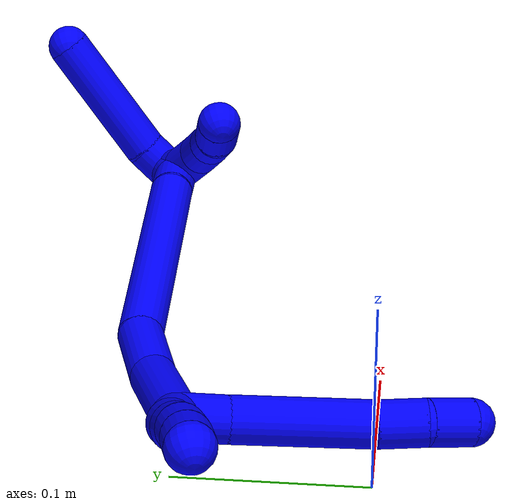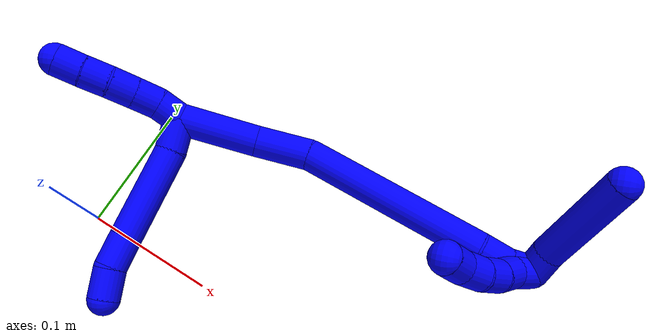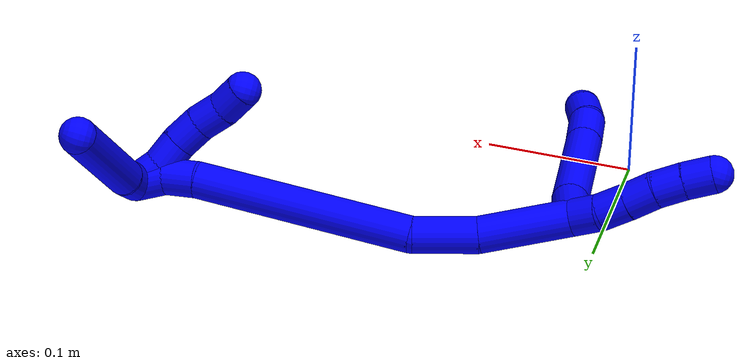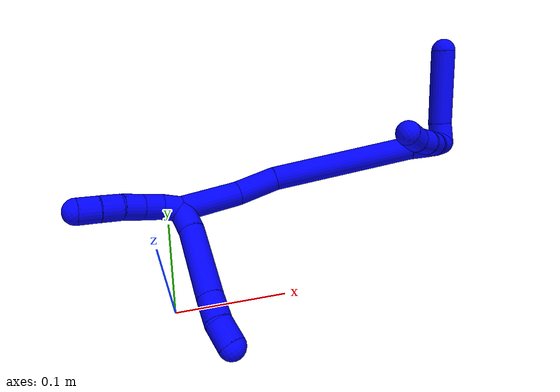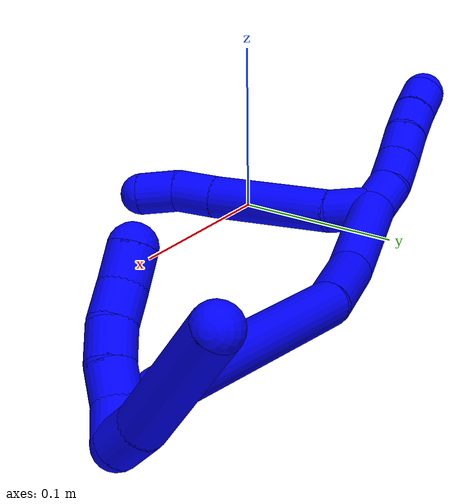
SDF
<sdf version="1.7">
 <world name="default">
  <model name="photoneo_s_sensor">
   <static>1</static>
   <pose>0 0 2 1.57079 1.57079 3.14159</pose>
   <link name="link">
    <inertial><mass>0.1</mass></inertial>
    <sensor name="sensor" type="depth">
     <update_rate>30</update_rate>
     <camera>
      <horizontal_fov>1.22</horizontal_fov>
      <image><width>1920</width><height>1200</height><format>B8G8R8</format></image>
      <clip><near>0.1</near><far>4</far></clip>
      <depth_camera><output>points</output></depth_camera>
     </camera>
     <plugin name="camera_plugin" filename="libgazebo_ros_depth_camera.so">
      <baseline>0.2</baseline>
      <alwaysOn>1</alwaysOn>
      <updateRate>0.0</updateRate>
      <cameraName>camera_ir</cameraName>
      <imageTopicName>/camera/color/image_raw</imageTopicName>
      <cameraInfoTopicName>/camera/color/camera_info</cameraInfoTopicName>
      <depthImageTopicName>/camera/depth/image_raw</depthImageTopicName>
      <depthImageCameraInfoTopicName>/camera/depth/camera_info</depthImageCameraInfoTopicName>
      <pointCloudTopicName>/camera/depth/points</pointCloudTopicName>
      <frameName>fr_optical</frameName>
      <pointCloudCutoff>0.1</pointCloudCutoff>
      <pointCloudCutoffMax>2.0</pointCloudCutoffMax>
      <distortionK1>0</distortionK1>
      <distortionK2>0</distortionK2>
      <distortionK3>0</distortionK3>
      <distortionT1>0</distortionT1>
      <distortionT2>0</distortionT2>
      <CxPrime>0</CxPrime>
      <Cx>0</Cx>
      <Cy>0</Cy>
      <focalLength>0</focalLength>
      <hackBaseline>0</hackBaseline>
     </plugin>
    </sensor>
   </link>
  </model>
  <model name="bin">
   <static>1</static>
   <link name="bottom">
    <collision name="collision-bottom">
     <pose>0 0 -0.01 0 -0 0</pose>
     <geometry><box><size>0.8 0.6 0.02</size></box></geometry>
     <surface>
      <friction><ode><mu>100</mu><mu2>100</mu2></ode></friction>
      <contact><collide_bitmask>65535</collide_bitmask></contact>
     </surface>
    </collision>
   </link>
   <link name="west_wall">
    <collision name="collision-west_wall">
     <pose>-0.41 0 0.1 0 -0 0</pose>
     <geometry><box><size>0.02 0.6 0.2</size></box></geometry>
     <surface>
      <friction><ode><mu>100</mu><mu2>100</mu2></ode></friction>
      <contact><collide_bitmask>65535</collide_bitmask></contact>
     </surface>
    </collision>
   </link>
   <link name="east_wall">
    <collision name="collision-east_wall">
     <pose>0.41 0 0.1 0 -0 0</pose>
     <geometry><box><size>0.02 0.6 0.2</size></box></geometry>
     <surface>
      <friction><ode><mu>100</mu><mu2>100</mu2></ode></friction>
      <contact><collide_bitmask>65535</collide_bitmask></contact>
     </surface>
    </collision>
   </link>
   <link name="south_wall">
    <collision name="collision-south_wall">
     <pose>0 -0.31 0.1 0 -0 0</pose>
     <geometry><box><size>0.8 0.02 0.2</size></box></geometry>
     <surface>
      <friction><ode><mu>100</mu><mu2>100</mu2></ode></friction>
      <contact><collide_bitmask>65535</collide_bitmask></contact>
     </surface>
    </collision>
   </link>
   <link name="north_wall">
    <collision name="collision-north_wall">
     <pose>0 0.31 0.1 0 -0 0</pose>
     <geometry><box><size>0.8 0.02 0.2</size></box></geometry>
     <surface>
      <friction><ode><mu>100</mu><mu2>100</mu2></ode></friction>
      <contact><collide_bitmask>65535</collide_bitmask></contact>
     </surface>
    </collision>
   </link>
  </model>
  <model name="1">
   <static>0</static>
   <link name="1">
    <collision name="collision-cylinder-e_1_2_8">
     <pose>0.011209 -0.007037 -0.0007 1.66989 1.00796 1.09407</pose>
     <geometry><cylinder><radius>0.0125</radius><length>0.026506</length></cylinder></geometry>
     <surface>
      <friction><ode><mu>1.16</mu><mu2>1.16</mu2><slip1>0</slip1><slip2>0</slip2></ode></friction>
      <contact><ode><kp>1e+06</kp><kd>1</kd><max_vel>0</max_vel><min_depth>0.001</min_depth></ode></contact>
     </surface>
    </collision>
    <visual name="visual-cylinder-e_1_2_8">
     <pose>0.011209 -0.007037 -0.0007 1.66989 1.00796 1.09407</pose>
     <geometry><cylinder><radius>0.0125</radius><length>0.026506</length></cylinder></geometry>
     <material><ambient>0 0 1 1</ambient></material>
    </visual>
    <collision name="collision-cylinder-e_2_8_9">
     <pose>0.049469 -0.038651 -0.007769 1.82439 0.817079 1.02005</pose>
     <geometry><cylinder><radius>0.0125</radius><length>0.0742</length></cylinder></geometry>
     <surface>
      <friction><ode><mu>1.16</mu><mu2>1.16</mu2><slip1>0</slip1><slip2>0</slip2></ode></friction>
      <contact><ode><kp>1e+06</kp><kd>1</kd><max_vel>0</max_vel><min_depth>0.001</min_depth></ode></contact>
     </surface>
    </collision>
    <visual name="visual-cylinder-e_2_8_9">
     <pose>0.049469 -0.038651 -0.007769 1.82439 0.817079 1.02005</pose>
     <geometry><cylinder><radius>0.0125</radius><length>0.0742</length></cylinder></geometry>
     <material><ambient>0 0 1 1</ambient></material>
    </visual>
    <collision name="collision-cylinder-e_3_9_10">
     <pose>0.085483 -0.072151 -0.015664 1.74013 0.780411 0.907331</pose>
     <geometry><cylinder><radius>0.0125</radius><length>0.025477</length></cylinder></geometry>
     <surface>
      <friction><ode><mu>1.16</mu><mu2>1.16</mu2><slip1>0</slip1><slip2>0</slip2></ode></friction>
      <contact><ode><kp>1e+06</kp><kd>1</kd><max_vel>0</max_vel><min_depth>0.001</min_depth></ode></contact>
     </surface>
    </collision>
    <visual name="visual-cylinder-e_3_9_10">
     <pose>0.085483 -0.072151 -0.015664 1.74013 0.780411 0.907331</pose>
     <geometry><cylinder><radius>0.0125</radius><length>0.025477</length></cylinder></geometry>
     <material><ambient>0 0 1 1</ambient></material>
    </visual>
    <collision name="collision-cylinder-e_4_10_6">
     <pose>0.104608 -0.087276 -0.016946 1.53157 1.02258 0.989439</pose>
     <geometry><cylinder><radius>0.0125</radius><length>0.023817</length></cylinder></geometry>
     <surface>
      <friction><ode><mu>1.16</mu><mu2>1.16</mu2><slip1>0</slip1><slip2>0</slip2></ode></friction>
      <contact><ode><kp>1e+06</kp><kd>1</kd><max_vel>0</max_vel><min_depth>0.001</min_depth></ode></contact>
     </surface>
    </collision>
    <visual name="visual-cylinder-e_4_10_6">
     <pose>0.104608 -0.087276 -0.016946 1.53157 1.02258 0.989439</pose>
     <geometry><cylinder><radius>0.0125</radius><length>0.023817</length></cylinder></geometry>
     <material><ambient>0 0 1 1</ambient></material>
    </visual>
    <collision name="collision-cylinder-e_1_2_11">
     <pose>-0.006483 -0.003358 -0.006833 2.6848 -0.705341 -2.01498</pose>
     <geometry><cylinder><radius>0.0125</radius><length>0.02</length></cylinder></geometry>
     <surface>
      <friction><ode><mu>1.16</mu><mu2>1.16</mu2><slip1>0</slip1><slip2>0</slip2></ode></friction>
      <contact><ode><kp>1e+06</kp><kd>1</kd><max_vel>0</max_vel><min_depth>0.001</min_depth></ode></contact>
     </surface>
    </collision>
    <visual name="visual-cylinder-e_1_2_11">
     <pose>-0.006483 -0.003358 -0.006833 2.6848 -0.705341 -2.01498</pose>
     <geometry><cylinder><radius>0.0125</radius><length>0.02</length></cylinder></geometry>
     <material><ambient>0 0 1 1</ambient></material>
    </visual>
    <collision name="collision-cylinder-e_2_11_12">
     <pose>-0.018118 -0.012017 -0.020401 2.47478 -0.541212 -1.35069</pose>
     <geometry><cylinder><radius>0.0125</radius><length>0.02</length></cylinder></geometry>
     <surface>
      <friction><ode><mu>1.16</mu><mu2>1.16</mu2><slip1>0</slip1><slip2>0</slip2></ode></friction>
      <contact><ode><kp>1e+06</kp><kd>1</kd><max_vel>0</max_vel><min_depth>0.001</min_depth></ode></contact>
     </surface>
    </collision>
    <visual name="visual-cylinder-e_2_11_12">
     <pose>-0.018118 -0.012017 -0.020401 2.47478 -0.541212 -1.35069</pose>
     <geometry><cylinder><radius>0.0125</radius><length>0.02</length></cylinder></geometry>
     <material><ambient>0 0 1 1</ambient></material>
    </visual>
    <collision name="collision-cylinder-e_3_12_13">
     <pose>-0.028431 -0.022964 -0.033577 2.42189 -0.542416 -1.27292</pose>
     <geometry><cylinder><radius>0.0125</radius><length>0.02</length></cylinder></geometry>
     <surface>
      <friction><ode><mu>1.16</mu><mu2>1.16</mu2><slip1>0</slip1><slip2>0</slip2></ode></friction>
      <contact><ode><kp>1e+06</kp><kd>1</kd><max_vel>0</max_vel><min_depth>0.001</min_depth></ode></contact>
     </surface>
    </collision>
    <visual name="visual-cylinder-e_3_12_13">
     <pose>-0.028431 -0.022964 -0.033577 2.42189 -0.542416 -1.27292</pose>
     <geometry><cylinder><radius>0.0125</radius><length>0.02</length></cylinder></geometry>
     <material><ambient>0 0 1 1</ambient></material>
    </visual>
    <collision name="collision-cylinder-e_4_13_14">
     <pose>-0.038237 -0.033459 -0.047428 2.56214 -0.482942 -1.38092</pose>
     <geometry><cylinder><radius>0.0125</radius><length>0.02</length></cylinder></geometry>
     <surface>
      <friction><ode><mu>1.16</mu><mu2>1.16</mu2><slip1>0</slip1><slip2>0</slip2></ode></friction>
      <contact><ode><kp>1e+06</kp><kd>1</kd><max_vel>0</max_vel><min_depth>0.001</min_depth></ode></contact>
     </surface>
    </collision>
    <visual name="visual-cylinder-e_4_13_14">
     <pose>-0.038237 -0.033459 -0.047428 2.56214 -0.482942 -1.38092</pose>
     <geometry><cylinder><radius>0.0125</radius><length>0.02</length></cylinder></geometry>
     <material><ambient>0 0 1 1</ambient></material>
    </visual>
    <collision name="collision-cylinder-e_5_14_5">
     <pose>-0.047543 -0.042537 -0.06261 2.64327 -0.485005 -1.54258</pose>
     <geometry><cylinder><radius>0.0125</radius><length>0.02</length></cylinder></geometry>
     <surface>
      <friction><ode><mu>1.16</mu><mu2>1.16</mu2><slip1>0</slip1><slip2>0</slip2></ode></friction>
      <contact><ode><kp>1e+06</kp><kd>1</kd><max_vel>0</max_vel><min_depth>0.001</min_depth></ode></contact>
     </surface>
    </collision>
    <visual name="visual-cylinder-e_5_14_5">
     <pose>-0.047543 -0.042537 -0.06261 2.64327 -0.485005 -1.54258</pose>
     <geometry><cylinder><radius>0.0125</radius><length>0.02</length></cylinder></geometry>
     <material><ambient>0 0 1 1</ambient></material>
    </visual>
    <collision name="collision-cylinder-e_1_2_15">
     <pose>0.010293 0.013205 0.026542 -0.461659 0.334185 -0.079237</pose>
     <geometry><cylinder><radius>0.0125</radius><length>0.062763</length></cylinder></geometry>
     <surface>
      <friction><ode><mu>1.16</mu><mu2>1.16</mu2><slip1>0</slip1><slip2>0</slip2></ode></friction>
      <contact><ode><kp>1e+06</kp><kd>1</kd><max_vel>0</max_vel><min_depth>0.001</min_depth></ode></contact>
     </surface>
    </collision>
    <visual name="visual-cylinder-e_1_2_15">
     <pose>0.010293 0.013205 0.026542 -0.461659 0.334185 -0.079237</pose>
     <geometry><cylinder><radius>0.0125</radius><length>0.062763</length></cylinder></geometry>
     <material><ambient>0 0 1 1</ambient></material>
    </visual>
    <collision name="collision-cylinder-e_2_15_16">
     <pose>0.025546 0.032195 0.07373 -0.273172 0.227335 -0.031378</pose>
     <geometry><cylinder><radius>0.0125</radius><length>0.044015</length></cylinder></geometry>
     <surface>
      <friction><ode><mu>1.16</mu><mu2>1.16</mu2><slip1>0</slip1><slip2>0</slip2></ode></friction>
      <contact><ode><kp>1e+06</kp><kd>1</kd><max_vel>0</max_vel><min_depth>0.001</min_depth></ode></contact>
     </surface>
    </collision>
    <visual name="visual-cylinder-e_2_15_16">
     <pose>0.025546 0.032195 0.07373 -0.273172 0.227335 -0.031378</pose>
     <geometry><cylinder><radius>0.0125</radius><length>0.044015</length></cylinder></geometry>
     <material><ambient>0 0 1 1</ambient></material>
    </visual>
    <collision name="collision-cylinder-e_3_16_17">
     <pose>0.057461 0.037965 0.164245 0.000208 0.368202 3.9e-05</pose>
     <geometry><cylinder><radius>0.0125</radius><length>0.149777</length></cylinder></geometry>
     <surface>
      <friction><ode><mu>1.16</mu><mu2>1.16</mu2><slip1>0</slip1><slip2>0</slip2></ode></friction>
      <contact><ode><kp>1e+06</kp><kd>1</kd><max_vel>0</max_vel><min_depth>0.001</min_depth></ode></contact>
     </surface>
    </collision>
    <visual name="visual-cylinder-e_3_16_17">
     <pose>0.057461 0.037965 0.164245 0.000208 0.368202 3.9e-05</pose>
     <geometry><cylinder><radius>0.0125</radius><length>0.149777</length></cylinder></geometry>
     <material><ambient>0 0 1 1</ambient></material>
    </visual>
    <collision name="collision-cylinder-e_4_17_18">
     <pose>0.08955 0.039336 0.244136 -0.137363 0.469522 -0.032902</pose>
     <geometry><cylinder><radius>0.0125</radius><length>0.022692</length></cylinder></geometry>
     <surface>
      <friction><ode><mu>1.16</mu><mu2>1.16</mu2><slip1>0</slip1><slip2>0</slip2></ode></friction>
      <contact><ode><kp>1e+06</kp><kd>1</kd><max_vel>0</max_vel><min_depth>0.001</min_depth></ode></contact>
     </surface>
    </collision>
    <visual name="visual-cylinder-e_4_17_18">
     <pose>0.08955 0.039336 0.244136 -0.137363 0.469522 -0.032902</pose>
     <geometry><cylinder><radius>0.0125</radius><length>0.022692</length></cylinder></geometry>
     <material><ambient>0 0 1 1</ambient></material>
    </visual>
    <collision name="collision-cylinder-e_5_18_1">
     <pose>0.098453 0.045215 0.262719 -0.483457 0.371755 -0.09266</pose>
     <geometry><cylinder><radius>0.0125</radius><length>0.020754</length></cylinder></geometry>
     <surface>
      <friction><ode><mu>1.16</mu><mu2>1.16</mu2><slip1>0</slip1><slip2>0</slip2></ode></friction>
      <contact><ode><kp>1e+06</kp><kd>1</kd><max_vel>0</max_vel><min_depth>0.001</min_depth></ode></contact>
     </surface>
    </collision>
    <visual name="visual-cylinder-e_5_18_1">
     <pose>0.098453 0.045215 0.262719 -0.483457 0.371755 -0.09266</pose>
     <geometry><cylinder><radius>0.0125</radius><length>0.020754</length></cylinder></geometry>
     <material><ambient>0 0 1 1</ambient></material>
    </visual>
    <collision name="collision-cylinder-e_1_1_19">
     <pose>0.099425 0.042157 0.265353 2.23614 -0.283591 -0.570921</pose>
     <geometry><cylinder><radius>0.0125</radius><length>0.02</length></cylinder></geometry>
     <surface>
      <friction><ode><mu>1.16</mu><mu2>1.16</mu2><slip1>0</slip1><slip2>0</slip2></ode></friction>
      <contact><ode><kp>1e+06</kp><kd>1</kd><max_vel>0</max_vel><min_depth>0.001</min_depth></ode></contact>
     </surface>
    </collision>
    <visual name="visual-cylinder-e_1_1_19">
     <pose>0.099425 0.042157 0.265353 2.23614 -0.283591 -0.570921</pose>
     <geometry><cylinder><radius>0.0125</radius><length>0.02</length></cylinder></geometry>
     <material><ambient>0 0 1 1</ambient></material>
    </visual>
    <collision name="collision-cylinder-e_2_19_20">
     <pose>0.093906 0.025638 0.255932 1.94247 -0.275574 -0.400324</pose>
     <geometry><cylinder><radius>0.0125</radius><length>0.02</length></cylinder></geometry>
     <surface>
      <friction><ode><mu>1.16</mu><mu2>1.16</mu2><slip1>0</slip1><slip2>0</slip2></ode></friction>
      <contact><ode><kp>1e+06</kp><kd>1</kd><max_vel>0</max_vel><min_depth>0.001</min_depth></ode></contact>
     </surface>
    </collision>
    <visual name="visual-cylinder-e_2_19_20">
     <pose>0.093906 0.025638 0.255932 1.94247 -0.275574 -0.400324</pose>
     <geometry><cylinder><radius>0.0125</radius><length>0.02</length></cylinder></geometry>
     <material><ambient>0 0 1 1</ambient></material>
    </visual>
    <collision name="collision-cylinder-e_3_20_21">
     <pose>0.087074 0.008814 0.247817 2.10227 -0.423645 -0.719089</pose>
     <geometry><cylinder><radius>0.0125</radius><length>0.02</length></cylinder></geometry>
     <surface>
      <friction><ode><mu>1.16</mu><mu2>1.16</mu2><slip1>0</slip1><slip2>0</slip2></ode></friction>
      <contact><ode><kp>1e+06</kp><kd>1</kd><max_vel>0</max_vel><min_depth>0.001</min_depth></ode></contact>
     </surface>
    </collision>
    <visual name="visual-cylinder-e_3_20_21">
     <pose>0.087074 0.008814 0.247817 2.10227 -0.423645 -0.719089</pose>
     <geometry><cylinder><radius>0.0125</radius><length>0.02</length></cylinder></geometry>
     <material><ambient>0 0 1 1</ambient></material>
    </visual>
    <collision name="collision-cylinder-e_4_21_22">
     <pose>0.077751 -0.005438 0.237543 2.29491 -0.548217 -1.11583</pose>
     <geometry><cylinder><radius>0.0125</radius><length>0.02</length></cylinder></geometry>
     <surface>
      <friction><ode><mu>1.16</mu><mu2>1.16</mu2><slip1>0</slip1><slip2>0</slip2></ode></friction>
      <contact><ode><kp>1e+06</kp><kd>1</kd><max_vel>0</max_vel><min_depth>0.001</min_depth></ode></contact>
     </surface>
    </collision>
    <visual name="visual-cylinder-e_4_21_22">
     <pose>0.077751 -0.005438 0.237543 2.29491 -0.548217 -1.11583</pose>
     <geometry><cylinder><radius>0.0125</radius><length>0.02</length></cylinder></geometry>
     <material><ambient>0 0 1 1</ambient></material>
    </visual>
    <collision name="collision-cylinder-e_5_22_4">
     <pose>0.066135 -0.018578 0.228221 2.06873 -0.69517 -1.09448</pose>
     <geometry><cylinder><radius>0.0125</radius><length>0.02</length></cylinder></geometry>
     <surface>
      <friction><ode><mu>1.16</mu><mu2>1.16</mu2><slip1>0</slip1><slip2>0</slip2></ode></friction>
      <contact><ode><kp>1e+06</kp><kd>1</kd><max_vel>0</max_vel><min_depth>0.001</min_depth></ode></contact>
     </surface>
    </collision>
    <visual name="visual-cylinder-e_5_22_4">
     <pose>0.066135 -0.018578 0.228221 2.06873 -0.69517 -1.09448</pose>
     <geometry><cylinder><radius>0.0125</radius><length>0.02</length></cylinder></geometry>
     <material><ambient>0 0 1 1</ambient></material>
    </visual>
    <collision name="collision-cylinder-e_1_1_23">
     <pose>0.092795 0.050033 0.276303 -0.06431 -1.08037 0.038574</pose>
     <geometry><cylinder><radius>0.0125</radius><length>0.021374</length></cylinder></geometry>
     <surface>
      <friction><ode><mu>1.16</mu><mu2>1.16</mu2><slip1>0</slip1><slip2>0</slip2></ode></friction>
      <contact><ode><kp>1e+06</kp><kd>1</kd><max_vel>0</max_vel><min_depth>0.001</min_depth></ode></contact>
     </surface>
    </collision>
    <visual name="visual-cylinder-e_1_1_23">
     <pose>0.092795 0.050033 0.276303 -0.06431 -1.08037 0.038574</pose>
     <geometry><cylinder><radius>0.0125</radius><length>0.021374</length></cylinder></geometry>
     <material><ambient>0 0 1 1</ambient></material>
    </visual>
    <collision name="collision-cylinder-e_2_23_3">
     <pose>0.050436 0.045615 0.302267 0.222672 -0.993019 -0.120992</pose>
     <geometry><cylinder><radius>0.0125</radius><length>0.078626</length></cylinder></geometry>
     <surface>
      <friction><ode><mu>1.16</mu><mu2>1.16</mu2><slip1>0</slip1><slip2>0</slip2></ode></friction>
      <contact><ode><kp>1e+06</kp><kd>1</kd><max_vel>0</max_vel><min_depth>0.001</min_depth></ode></contact>
     </surface>
    </collision>
    <visual name="visual-cylinder-e_2_23_3">
     <pose>0.050436 0.045615 0.302267 0.222672 -0.993019 -0.120992</pose>
     <geometry><cylinder><radius>0.0125</radius><length>0.078626</length></cylinder></geometry>
     <material><ambient>0 0 1 1</ambient></material>
    </visual>
    <collision name="collision-sphere-3">
     <pose>0.017505 0.040873 0.323209 0 -0 0</pose>
     <geometry><sphere><radius>0.0125</radius></sphere></geometry>
     <surface>
      <friction><ode><mu>1.16</mu><mu2>1.16</mu2><slip1>0</slip1><slip2>0</slip2></ode></friction>
      <contact><ode><kp>1e+06</kp><kd>1</kd><max_vel>0</max_vel><min_depth>0.001</min_depth></ode></contact>
     </surface>
    </collision>
    <visual name="visual-sphere-3">
     <pose>0.017505 0.040873 0.323209 0 -0 0</pose>
     <geometry><sphere><radius>0.0125</radius></sphere></geometry>
     <material><ambient>0 0 1 1</ambient></material>
    </visual>
    <collision name="collision-sphere-23">
     <pose>0.083368 0.050357 0.281326 0 -0 0</pose>
     <geometry><sphere><radius>0.0125</radius></sphere></geometry>
     <surface>
      <friction><ode><mu>1.16</mu><mu2>1.16</mu2><slip1>0</slip1><slip2>0</slip2></ode></friction>
      <contact><ode><kp>1e+06</kp><kd>1</kd><max_vel>0</max_vel><min_depth>0.001</min_depth></ode></contact>
     </surface>
    </collision>
    <visual name="visual-sphere-23">
     <pose>0.083368 0.050357 0.281326 0 -0 0</pose>
     <geometry><sphere><radius>0.0125</radius></sphere></geometry>
     <material><ambient>0 0 1 1</ambient></material>
    </visual>
    <collision name="collision-sphere-4">
     <pose>0.059729 -0.025325 0.224554 0 -0 0</pose>
     <geometry><sphere><radius>0.0125</radius></sphere></geometry>
     <surface>
      <friction><ode><mu>1.16</mu><mu2>1.16</mu2><slip1>0</slip1><slip2>0</slip2></ode></friction>
      <contact><ode><kp>1e+06</kp><kd>1</kd><max_vel>0</max_vel><min_depth>0.001</min_depth></ode></contact>
     </surface>
    </collision>
    <visual name="visual-sphere-4">
     <pose>0.059729 -0.025325 0.224554 0 -0 0</pose>
     <geometry><sphere><radius>0.0125</radius></sphere></geometry>
     <material><ambient>0 0 1 1</ambient></material>
    </visual>
    <collision name="collision-sphere-22">
     <pose>0.07254 -0.011831 0.231889 0 -0 0</pose>
     <geometry><sphere><radius>0.0125</radius></sphere></geometry>
     <surface>
      <friction><ode><mu>1.16</mu><mu2>1.16</mu2><slip1>0</slip1><slip2>0</slip2></ode></friction>
      <contact><ode><kp>1e+06</kp><kd>1</kd><max_vel>0</max_vel><min_depth>0.001</min_depth></ode></contact>
     </surface>
    </collision>
    <visual name="visual-sphere-22">
     <pose>0.07254 -0.011831 0.231889 0 -0 0</pose>
     <geometry><sphere><radius>0.0125</radius></sphere></geometry>
     <material><ambient>0 0 1 1</ambient></material>
    </visual>
    <collision name="collision-sphere-21">
     <pose>0.082963 0.000956 0.243197 0 -0 0</pose>
     <geometry><sphere><radius>0.0125</radius></sphere></geometry>
     <surface>
      <friction><ode><mu>1.16</mu><mu2>1.16</mu2><slip1>0</slip1><slip2>0</slip2></ode></friction>
      <contact><ode><kp>1e+06</kp><kd>1</kd><max_vel>0</max_vel><min_depth>0.001</min_depth></ode></contact>
     </surface>
    </collision>
    <visual name="visual-sphere-21">
     <pose>0.082963 0.000956 0.243197 0 -0 0</pose>
     <geometry><sphere><radius>0.0125</radius></sphere></geometry>
     <material><ambient>0 0 1 1</ambient></material>
    </visual>
    <collision name="collision-sphere-20">
     <pose>0.091185 0.016673 0.252437 0 -0 0</pose>
     <geometry><sphere><radius>0.0125</radius></sphere></geometry>
     <surface>
      <friction><ode><mu>1.16</mu><mu2>1.16</mu2><slip1>0</slip1><slip2>0</slip2></ode></friction>
      <contact><ode><kp>1e+06</kp><kd>1</kd><max_vel>0</max_vel><min_depth>0.001</min_depth></ode></contact>
     </surface>
    </collision>
    <visual name="visual-sphere-20">
     <pose>0.091185 0.016673 0.252437 0 -0 0</pose>
     <geometry><sphere><radius>0.0125</radius></sphere></geometry>
     <material><ambient>0 0 1 1</ambient></material>
    </visual>
    <collision name="collision-sphere-11">
     <pose>-0.012966 -0.006717 -0.013667 0 -0 0</pose>
     <geometry><sphere><radius>0.0125</radius></sphere></geometry>
     <surface>
      <friction><ode><mu>1.16</mu><mu2>1.16</mu2><slip1>0</slip1><slip2>0</slip2></ode></friction>
      <contact><ode><kp>1e+06</kp><kd>1</kd><max_vel>0</max_vel><min_depth>0.001</min_depth></ode></contact>
     </surface>
    </collision>
    <visual name="visual-sphere-11">
     <pose>-0.012966 -0.006717 -0.013667 0 -0 0</pose>
     <geometry><sphere><radius>0.0125</radius></sphere></geometry>
     <material><ambient>0 0 1 1</ambient></material>
    </visual>
    <collision name="collision-sphere-6">
     <pose>0.114772 -0.093477 -0.016703 0 -0 0</pose>
     <geometry><sphere><radius>0.0125</radius></sphere></geometry>
     <surface>
      <friction><ode><mu>1.16</mu><mu2>1.16</mu2><slip1>0</slip1><slip2>0</slip2></ode></friction>
      <contact><ode><kp>1e+06</kp><kd>1</kd><max_vel>0</max_vel><min_depth>0.001</min_depth></ode></contact>
     </surface>
    </collision>
    <visual name="visual-sphere-6">
     <pose>0.114772 -0.093477 -0.016703 0 -0 0</pose>
     <geometry><sphere><radius>0.0125</radius></sphere></geometry>
     <material><ambient>0 0 1 1</ambient></material>
    </visual>
    <collision name="collision-sphere-10">
     <pose>0.094445 -0.081074 -0.01719 0 -0 0</pose>
     <geometry><sphere><radius>0.0125</radius></sphere></geometry>
     <surface>
      <friction><ode><mu>1.16</mu><mu2>1.16</mu2><slip1>0</slip1><slip2>0</slip2></ode></friction>
      <contact><ode><kp>1e+06</kp><kd>1</kd><max_vel>0</max_vel><min_depth>0.001</min_depth></ode></contact>
     </surface>
    </collision>
    <visual name="visual-sphere-10">
     <pose>0.094445 -0.081074 -0.01719 0 -0 0</pose>
     <geometry><sphere><radius>0.0125</radius></sphere></geometry>
     <material><ambient>0 0 1 1</ambient></material>
    </visual>
    <collision name="collision-sphere-9">
     <pose>0.07652 -0.063229 -0.014139 0 -0 0</pose>
     <geometry><sphere><radius>0.0125</radius></sphere></geometry>
     <surface>
      <friction><ode><mu>1.16</mu><mu2>1.16</mu2><slip1>0</slip1><slip2>0</slip2></ode></friction>
      <contact><ode><kp>1e+06</kp><kd>1</kd><max_vel>0</max_vel><min_depth>0.001</min_depth></ode></contact>
     </surface>
    </collision>
    <visual name="visual-sphere-9">
     <pose>0.07652 -0.063229 -0.014139 0 -0 0</pose>
     <geometry><sphere><radius>0.0125</radius></sphere></geometry>
     <material><ambient>0 0 1 1</ambient></material>
    </visual>
    <collision name="collision-sphere-2">
     <geometry><sphere><radius>0.0125</radius></sphere></geometry>
     <surface>
      <friction><ode><mu>1.16</mu><mu2>1.16</mu2><slip1>0</slip1><slip2>0</slip2></ode></friction>
      <contact><ode><kp>1e+06</kp><kd>1</kd><max_vel>0</max_vel><min_depth>0.001</min_depth></ode></contact>
     </surface>
    </collision>
    <visual name="visual-sphere-2">
     <geometry><sphere><radius>0.0125</radius></sphere></geometry>
     <material><ambient>0 0 1 1</ambient></material>
    </visual>
    <collision name="collision-sphere-19">
     <pose>0.096627 0.034604 0.259426 0 -0 0</pose>
     <geometry><sphere><radius>0.0125</radius></sphere></geometry>
     <surface>
      <friction><ode><mu>1.16</mu><mu2>1.16</mu2><slip1>0</slip1><slip2>0</slip2></ode></friction>
      <contact><ode><kp>1e+06</kp><kd>1</kd><max_vel>0</max_vel><min_depth>0.001</min_depth></ode></contact>
     </surface>
    </collision>
    <visual name="visual-sphere-19">
     <pose>0.096627 0.034604 0.259426 0 -0 0</pose>
     <geometry><sphere><radius>0.0125</radius></sphere></geometry>
     <material><ambient>0 0 1 1</ambient></material>
    </visual>
    <collision name="collision-sphere-8">
     <pose>0.022417 -0.014074 -0.001399 0 -0 0</pose>
     <geometry><sphere><radius>0.0125</radius></sphere></geometry>
     <surface>
      <friction><ode><mu>1.16</mu><mu2>1.16</mu2><slip1>0</slip1><slip2>0</slip2></ode></friction>
      <contact><ode><kp>1e+06</kp><kd>1</kd><max_vel>0</max_vel><min_depth>0.001</min_depth></ode></contact>
     </surface>
    </collision>
    <visual name="visual-sphere-8">
     <pose>0.022417 -0.014074 -0.001399 0 -0 0</pose>
     <geometry><sphere><radius>0.0125</radius></sphere></geometry>
     <material><ambient>0 0 1 1</ambient></material>
    </visual>
    <collision name="collision-sphere-12">
     <pose>-0.023269 -0.017318 -0.027136 0 -0 0</pose>
     <geometry><sphere><radius>0.0125</radius></sphere></geometry>
     <surface>
      <friction><ode><mu>1.16</mu><mu2>1.16</mu2><slip1>0</slip1><slip2>0</slip2></ode></friction>
      <contact><ode><kp>1e+06</kp><kd>1</kd><max_vel>0</max_vel><min_depth>0.001</min_depth></ode></contact>
     </surface>
    </collision>
    <visual name="visual-sphere-12">
     <pose>-0.023269 -0.017318 -0.027136 0 -0 0</pose>
     <geometry><sphere><radius>0.0125</radius></sphere></geometry>
     <material><ambient>0 0 1 1</ambient></material>
    </visual>
    <collision name="collision-sphere-13">
     <pose>-0.033593 -0.028609 -0.040018 0 -0 0</pose>
     <geometry><sphere><radius>0.0125</radius></sphere></geometry>
     <surface>
      <friction><ode><mu>1.16</mu><mu2>1.16</mu2><slip1>0</slip1><slip2>0</slip2></ode></friction>
      <contact><ode><kp>1e+06</kp><kd>1</kd><max_vel>0</max_vel><min_depth>0.001</min_depth></ode></contact>
     </surface>
    </collision>
    <visual name="visual-sphere-13">
     <pose>-0.033593 -0.028609 -0.040018 0 -0 0</pose>
     <geometry><sphere><radius>0.0125</radius></sphere></geometry>
     <material><ambient>0 0 1 1</ambient></material>
    </visual>
    <collision name="collision-sphere-14">
     <pose>-0.042881 -0.038308 -0.054839 0 -0 0</pose>
     <geometry><sphere><radius>0.0125</radius></sphere></geometry>
     <surface>
      <friction><ode><mu>1.16</mu><mu2>1.16</mu2><slip1>0</slip1><slip2>0</slip2></ode></friction>
      <contact><ode><kp>1e+06</kp><kd>1</kd><max_vel>0</max_vel><min_depth>0.001</min_depth></ode></contact>
     </surface>
    </collision>
    <visual name="visual-sphere-14">
     <pose>-0.042881 -0.038308 -0.054839 0 -0 0</pose>
     <geometry><sphere><radius>0.0125</radius></sphere></geometry>
     <material><ambient>0 0 1 1</ambient></material>
    </visual>
    <collision name="collision-sphere-5">
     <pose>-0.052205 -0.046765 -0.070381 0 -0 0</pose>
     <geometry><sphere><radius>0.0125</radius></sphere></geometry>
     <surface>
      <friction><ode><mu>1.16</mu><mu2>1.16</mu2><slip1>0</slip1><slip2>0</slip2></ode></friction>
      <contact><ode><kp>1e+06</kp><kd>1</kd><max_vel>0</max_vel><min_depth>0.001</min_depth></ode></contact>
     </surface>
    </collision>
    <visual name="visual-sphere-5">
     <pose>-0.052205 -0.046765 -0.070381 0 -0 0</pose>
     <geometry><sphere><radius>0.0125</radius></sphere></geometry>
     <material><ambient>0 0 1 1</ambient></material>
    </visual>
    <collision name="collision-sphere-15">
     <pose>0.020586 0.02641 0.053084 0 -0 0</pose>
     <geometry><sphere><radius>0.0125</radius></sphere></geometry>
     <surface>
      <friction><ode><mu>1.16</mu><mu2>1.16</mu2><slip1>0</slip1><slip2>0</slip2></ode></friction>
      <contact><ode><kp>1e+06</kp><kd>1</kd><max_vel>0</max_vel><min_depth>0.001</min_depth></ode></contact>
     </surface>
    </collision>
    <visual name="visual-sphere-15">
     <pose>0.020586 0.02641 0.053084 0 -0 0</pose>
     <geometry><sphere><radius>0.0125</radius></sphere></geometry>
     <material><ambient>0 0 1 1</ambient></material>
    </visual>
    <collision name="collision-sphere-16">
     <pose>0.030506 0.037979 0.094376 0 -0 0</pose>
     <geometry><sphere><radius>0.0125</radius></sphere></geometry>
     <surface>
      <friction><ode><mu>1.16</mu><mu2>1.16</mu2><slip1>0</slip1><slip2>0</slip2></ode></friction>
      <contact><ode><kp>1e+06</kp><kd>1</kd><max_vel>0</max_vel><min_depth>0.001</min_depth></ode></contact>
     </surface>
    </collision>
    <visual name="visual-sphere-16">
     <pose>0.030506 0.037979 0.094376 0 -0 0</pose>
     <geometry><sphere><radius>0.0125</radius></sphere></geometry>
     <material><ambient>0 0 1 1</ambient></material>
    </visual>
    <collision name="collision-sphere-17">
     <pose>0.084417 0.03795 0.234114 0 -0 0</pose>
     <geometry><sphere><radius>0.0125</radius></sphere></geometry>
     <surface>
      <friction><ode><mu>1.16</mu><mu2>1.16</mu2><slip1>0</slip1><slip2>0</slip2></ode></friction>
      <contact><ode><kp>1e+06</kp><kd>1</kd><max_vel>0</max_vel><min_depth>0.001</min_depth></ode></contact>
     </surface>
    </collision>
    <visual name="visual-sphere-17">
     <pose>0.084417 0.03795 0.234114 0 -0 0</pose>
     <geometry><sphere><radius>0.0125</radius></sphere></geometry>
     <material><ambient>0 0 1 1</ambient></material>
    </visual>
    <collision name="collision-sphere-18">
     <pose>0.094684 0.040721 0.254159 0 -0 0</pose>
     <geometry><sphere><radius>0.0125</radius></sphere></geometry>
     <surface>
      <friction><ode><mu>1.16</mu><mu2>1.16</mu2><slip1>0</slip1><slip2>0</slip2></ode></friction>
      <contact><ode><kp>1e+06</kp><kd>1</kd><max_vel>0</max_vel><min_depth>0.001</min_depth></ode></contact>
     </surface>
    </collision>
    <visual name="visual-sphere-18">
     <pose>0.094684 0.040721 0.254159 0 -0 0</pose>
     <geometry><sphere><radius>0.0125</radius></sphere></geometry>
     <material><ambient>0 0 1 1</ambient></material>
    </visual>
    <collision name="collision-sphere-1">
     <pose>0.102223 0.04971 0.27128 0 -0 0</pose>
     <geometry><sphere><radius>0.0125</radius></sphere></geometry>
     <surface>
      <friction><ode><mu>1.16</mu><mu2>1.16</mu2><slip1>0</slip1><slip2>0</slip2></ode></friction>
      <contact><ode><kp>1e+06</kp><kd>1</kd><max_vel>0</max_vel><min_depth>0.001</min_depth></ode></contact>
     </surface>
    </collision>
    <visual name="visual-sphere-1">
     <pose>0.102223 0.04971 0.27128 0 -0 0</pose>
     <geometry><sphere><radius>0.0125</radius></sphere></geometry>
     <material><ambient>0 0 1 1</ambient></material>
    </visual>
    <inertial>
     <pose>0.04633 0.008284 0.120077 0 -0 0</pose>
     <mass>0.75</mass>
     <inertia>
      <ixx>0.000358</ixx>
      <ixy>0</ixy>
      <ixz>0</ixz>
      <iyy>0.000382</iyy>
      <iyz>0</iyz>
      <izz>-5.7e-05</izz>
     </inertia>
    </inertial>
   </link>
   <pose>0.015661 0.098012 0.024842 -1.11373 0.682214 -0.980651</pose>
  </model>
 </world>
</sdf>
